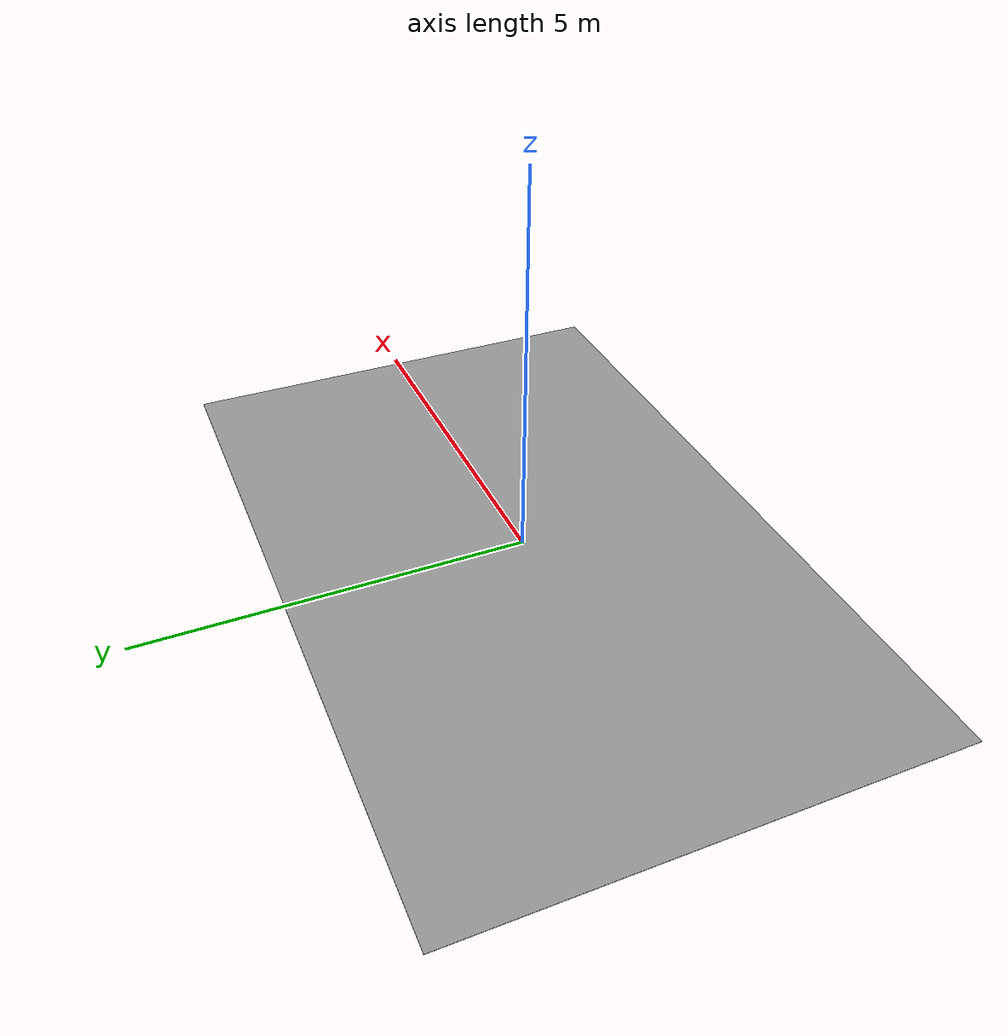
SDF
<?xml version='1.0'?>
<sdf version='1.6'>
  <model name='fhs_floor_2'>
    <link name='link_0'>
      <pose frame=''>0 0 0 0 -0 0</pose>
      <visual name='visual'>
        <geometry>
          <box>
            <size>9.75 6.25 0.01</size>
          </box>
        </geometry>
        <material>
          <lighting>1</lighting>
          <script>
            <uri>file://media/materials/scripts/gazebo.material</uri>
            <name>Gazebo/Grey</name>
          </script>
          <shader type='vertex'>
            <normal_map>__default__</normal_map>
          </shader>
          <ambient>0.3 0.3 0.3 1</ambient>
          <diffuse>0.7 0.7 0.7 1</diffuse>
          <specular>0.01 0.01 0.01 1</specular>
          <emissive>0 0 0 1</emissive>
        </material>
        <cast_shadows>1</cast_shadows>
      </visual>
      <collision name='collision'>
        <geometry>
          <box>
            <size>9.75 6.25 0.001</size>
          </box>
        </geometry>
      </collision>
    </link>
    <static>1</static>
    <allow_auto_disable>1</allow_auto_disable>
  </model>
</sdf>
